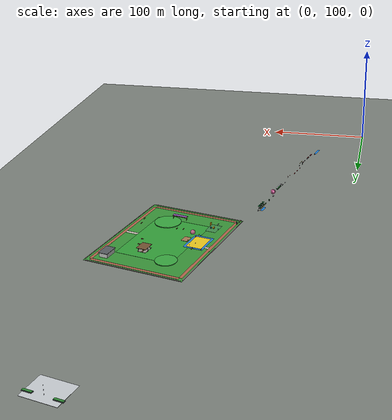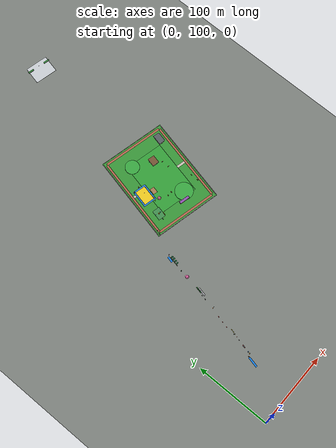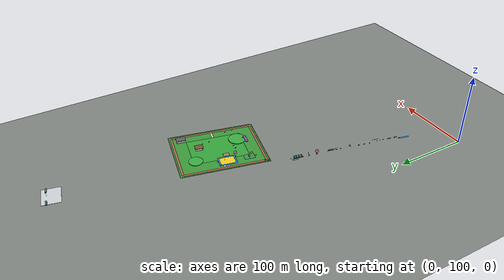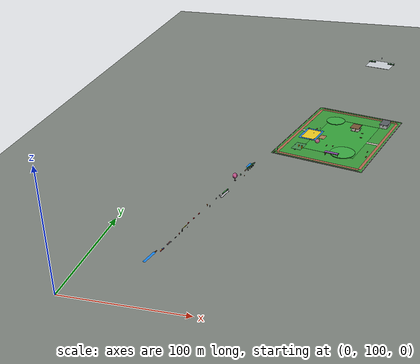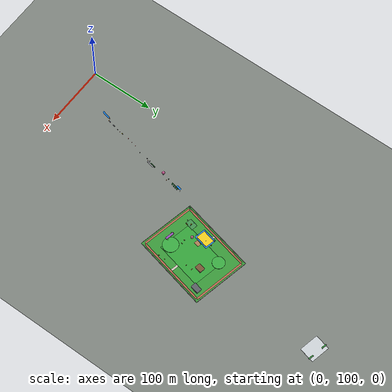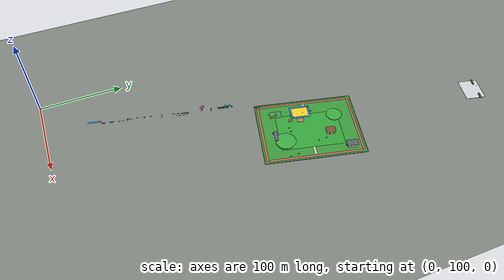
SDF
<sdf version="1.8">
 <world name="guanxin_world">
  <model name="ground_plane">
   <static>true</static>
   <pose>-100 480 0 0 0 0</pose>
   <link name="ground_link">
    <collision name="ground_col">
     <geometry><plane><normal>0 0 1</normal><size>1400 1400</size></plane></geometry>
     <surface>
      <friction><ode><mu>0.9</mu><mu2>0.9</mu2></ode></friction>
      <contact><ode><kd>100000</kd><kp>10000000</kp></ode></contact>
     </surface>
    </collision>
    <visual name="ground_vis">
     <geometry><plane><normal>0 0 1</normal><size>1400 1400</size></plane></geometry>
     <material><ambient>0.42 0.44 0.42 1</ambient><diffuse>0.48 0.50 0.48 1</diffuse></material>
    </visual>
   </link>
  </model>
  <model name="commercial_strip_details">
   <static>true</static>
   <link name="details_link">
    <collision name="cart_corral_col">
     <pose>53.955 176.913 0.450 0.000 0.000 1.34512</pose>
     <geometry><box><size>5.0 1.2 0.9</size></box></geometry>
    </collision>
    <visual name="cart_corral_rail_l">
     <pose>54.442 176.801 0.500 0.000 1.571 1.34512</pose>
     <geometry><cylinder><radius>0.03</radius><length>5.0</length></cylinder></geometry>
     <material><ambient>0.7 0.7 0.75 1</ambient><diffuse>0.85 0.85 0.9 1</diffuse></material>
    </visual>
    <visual name="cart_corral_rail_r">
     <pose>53.468 177.025 0.500 0.000 1.571 1.34512</pose>
     <geometry><cylinder><radius>0.03</radius><length>5.0</length></cylinder></geometry>
     <material><ambient>0.7 0.7 0.75 1</ambient><diffuse>0.85 0.85 0.9 1</diffuse></material>
    </visual>
    <visual name="cart_corral_post1">
     <pose>53.905 174.462 0.450 0.000 0.000 1.34512</pose>
     <geometry><cylinder><radius>0.035</radius><length>0.9</length></cylinder></geometry>
     <material><ambient>0.7 0.7 0.75 1</ambient><diffuse>0.85 0.85 0.9 1</diffuse></material>
    </visual>
    <visual name="cart_corral_post2">
     <pose>54.979 179.140 0.450 0.000 0.000 1.34512</pose>
     <geometry><cylinder><radius>0.035</radius><length>0.9</length></cylinder></geometry>
     <material><ambient>0.7 0.7 0.75 1</ambient><diffuse>0.85 0.85 0.9 1</diffuse></material>
    </visual>
    <visual name="cart_corral_post3">
     <pose>52.931 174.685 0.450 0.000 0.000 1.34512</pose>
     <geometry><cylinder><radius>0.035</radius><length>0.9</length></cylinder></geometry>
     <material><ambient>0.7 0.7 0.75 1</ambient><diffuse>0.85 0.85 0.9 1</diffuse></material>
    </visual>
    <visual name="cart_corral_post4">
     <pose>54.005 179.364 0.450 0.000 0.000 1.34512</pose>
     <geometry><cylinder><radius>0.035</radius><length>0.9</length></cylinder></geometry>
     <material><ambient>0.7 0.7 0.75 1</ambient><diffuse>0.85 0.85 0.9 1</diffuse></material>
    </visual>
    <visual name="carts_row1">
     <pose>54.199 176.857 0.480 0.000 0.000 1.34512</pose>
     <geometry><box><size>4.5 0.4 0.75</size></box></geometry>
     <material><ambient>0.6 0.62 0.65 1</ambient><diffuse>0.75 0.78 0.8 1</diffuse></material>
    </visual>
    <visual name="carts_row1_handles">
     <pose>54.199 176.857 0.880 0.000 0.000 1.34512</pose>
     <geometry><box><size>4.5 0.08 0.05</size></box></geometry>
     <material><ambient>0.85 0.1 0.1 1</ambient><diffuse>0.95 0.12 0.12 1</diffuse></material>
    </visual>
    <visual name="carts_row2">
     <pose>53.711 176.969 0.480 0.000 0.000 1.34512</pose>
     <geometry><box><size>4.5 0.4 0.75</size></box></geometry>
     <material><ambient>0.6 0.62 0.65 1</ambient><diffuse>0.75 0.78 0.8 1</diffuse></material>
    </visual>
    <visual name="carts_row2_handles">
     <pose>53.711 176.969 0.880 0.000 0.000 1.34512</pose>
     <geometry><box><size>4.5 0.08 0.05</size></box></geometry>
     <material><ambient>0.85 0.1 0.1 1</ambient><diffuse>0.95 0.12 0.12 1</diffuse></material>
    </visual>
    <visual name="poya_promo_cart1">
     <pose>51.689 166.147 0.450 0.000 0.000 1.34512</pose>
     <geometry><box><size>1.6 0.9 0.75</size></box></geometry>
     <material><ambient>0.85 0.1 0.3 1</ambient><diffuse>0.92 0.15 0.35 1</diffuse></material>
    </visual>
    <visual name="poya_promo_goods1">
     <pose>51.689 166.147 0.900 0.000 0.000 1.34512</pose>
     <geometry><box><size>1.5 0.8 0.2</size></box></geometry>
     <material><ambient>0.9 0.8 0.3 1</ambient><diffuse>0.95 0.85 0.35 1</diffuse></material>
    </visual>
    <visual name="poya_promo_cart2">
     <pose>52.248 168.583 0.450 0.000 0.000 1.34512</pose>
     <geometry><box><size>1.6 0.9 0.75</size></box></geometry>
     <material><ambient>0.85 0.1 0.3 1</ambient><diffuse>0.92 0.15 0.35 1</diffuse></material>
    </visual>
    <visual name="poya_promo_goods2">
     <pose>52.248 168.583 0.900 0.000 0.000 1.34512</pose>
     <geometry><box><size>1.5 0.8 0.2</size></box></geometry>
     <material><ambient>0.3 0.7 0.9 1</ambient><diffuse>0.35 0.75 0.95 1</diffuse></material>
    </visual>
    <collision name="bench_poya_col">
     <pose>48.205 164.382 0.400 0.000 0.000 1.34512</pose>
     <geometry><box><size>2.0 0.6 0.5</size></box></geometry>
    </collision>
    <visual name="bench_poya_vis">
     <pose>48.205 164.382 0.350 0.000 0.000 1.34512</pose>
     <geometry><box><size>2.0 0.6 0.45</size></box></geometry>
     <material><ambient>0.45 0.28 0.15 1</ambient><diffuse>0.55 0.35 0.2 1</diffuse></material>
    </visual>
    <visual name="cheogajip_wait_bench">
     <pose>56.164 185.640 0.350 0.000 0.000 1.34512</pose>
     <geometry><box><size>1.8 0.5 0.45</size></box></geometry>
     <material><ambient>0.2 0.2 0.2 1</ambient><diffuse>0.25 0.25 0.25 1</diffuse></material>
    </visual>
    <visual name="cheogajip_menu_stand">
     <pose>57.283 190.513 0.650 0.000 0.000 1.34512</pose>
     <geometry><box><size>0.6 0.4 1.3</size></box></geometry>
     <material><ambient>0.85 0.15 0.1 1</ambient><diffuse>0.9 0.2 0.12 1</diffuse></material>
    </visual>
    <collision name="mcd_gantry_post_l">
     <pose>58.470 194.344 1.500 0.000 0.000 1.34512</pose>
     <geometry><cylinder><radius>0.08</radius><length>3.0</length></cylinder></geometry>
    </collision>
    <visual name="mcd_gantry_post_l_vis">
     <pose>58.470 194.344 1.500 0.000 0.000 1.34512</pose>
     <geometry><cylinder><radius>0.08</radius><length>3.0</length></cylinder></geometry>
     <material><ambient>0.2 0.2 0.2 1</ambient><diffuse>0.25 0.25 0.25 1</diffuse></material>
    </visual>
    <collision name="mcd_gantry_post_r">
     <pose>60.037 201.167 1.500 0.000 0.000 1.34512</pose>
     <geometry><cylinder><radius>0.08</radius><length>3.0</length></cylinder></geometry>
    </collision>
    <visual name="mcd_gantry_post_r_vis">
     <pose>60.037 201.167 1.500 0.000 0.000 1.34512</pose>
     <geometry><cylinder><radius>0.08</radius><length>3.0</length></cylinder></geometry>
     <material><ambient>0.2 0.2 0.2 1</ambient><diffuse>0.25 0.25 0.25 1</diffuse></material>
    </visual>
    <visual name="mcd_gantry_bar">
     <pose>59.253 197.756 2.900 0.000 0.000 1.34512</pose>
     <geometry><box><size>7.2 0.2 0.35</size></box></geometry>
     <material><ambient>0.9 0.85 0.05 1</ambient><diffuse>0.95 0.9 0.05 1</diffuse></material>
    </visual>
    <visual name="mcd_gantry_sign">
     <pose>59.136 197.782 2.900 0.000 0.000 1.34512</pose>
     <geometry><box><size>3.0 0.05 0.25</size></box></geometry>
     <material><ambient>0.1 0.1 0.1 1</ambient><diffuse>0.15 0.15 0.15 1</diffuse></material>
    </visual>
    <visual name="mcd_in_pylon">
     <pose>57.652 195.250 1.200 0.000 0.000 1.34512</pose>
     <geometry><box><size>0.4 0.4 2.4</size></box></geometry>
     <material><ambient>0.15 0.15 0.15 1</ambient><diffuse>0.2 0.2 0.2 1</diffuse></material>
    </visual>
    <visual name="mcd_in_pylon_m">
     <pose>57.457 195.295 2.100 0.000 0.000 1.34512</pose>
     <geometry><box><size>0.3 0.05 0.3</size></box></geometry>
     <material><ambient>0.95 0.85 0.05 1</ambient><diffuse>0.98 0.88 0.05 1</diffuse></material>
    </visual>
    <visual name="mcd_barrier_1">
     <pose>58.831 207.087 0.450 0.000 0.000 1.34512</pose>
     <geometry><box><size>1.6 0.4 0.85</size></box></geometry>
     <material><ambient>0.85 0.1 0.1 1</ambient><diffuse>0.92 0.12 0.12 1</diffuse></material>
    </visual>
    <visual name="mcd_barrier_1_board">
     <pose>58.831 207.087 0.500 0.000 0.000 1.34512</pose>
     <geometry><box><size>1.4 0.05 0.45</size></box></geometry>
     <material><ambient>0.92 0.85 0.05 1</ambient><diffuse>0.95 0.88 0.05 1</diffuse></material>
    </visual>
    <visual name="mcd_barrier_2">
     <pose>60.621 214.884 0.450 0.000 0.000 1.34512</pose>
     <geometry><box><size>1.6 0.4 0.85</size></box></geometry>
     <material><ambient>0.85 0.1 0.1 1</ambient><diffuse>0.92 0.12 0.12 1</diffuse></material>
    </visual>
    <visual name="mcd_barrier_2_board">
     <pose>60.621 214.884 0.500 0.000 0.000 1.34512</pose>
     <geometry><box><size>1.4 0.05 0.45</size></box></geometry>
     <material><ambient>0.92 0.85 0.05 1</ambient><diffuse>0.95 0.88 0.05 1</diffuse></material>
    </visual>
    <visual name="mcd_barrier_3">
     <pose>62.411 222.681 0.450 0.000 0.000 1.34512</pose>
     <geometry><box><size>1.6 0.4 0.85</size></box></geometry>
     <material><ambient>0.85 0.1 0.1 1</ambient><diffuse>0.92 0.12 0.12 1</diffuse></material>
    </visual>
    <visual name="mcd_barrier_3_board">
     <pose>62.411 222.681 0.500 0.000 0.000 1.34512</pose>
     <geometry><box><size>1.4 0.05 0.45</size></box></geometry>
     <material><ambient>0.92 0.85 0.05 1</ambient><diffuse>0.95 0.88 0.05 1</diffuse></material>
    </visual>
    <collision name="convex_mirror_post_col">
     <pose>65.695 234.752 1.400 0.000 0.000 1.34512</pose>
     <geometry><cylinder><radius>0.05</radius><length>2.8</length></cylinder></geometry>
    </collision>
    <visual name="convex_mirror_post">
     <pose>65.695 234.752 1.400 0.000 0.000 1.34512</pose>
     <geometry><cylinder><radius>0.05</radius><length>2.8</length></cylinder></geometry>
     <material><ambient>0.9 0.4 0.05 1</ambient><diffuse>0.95 0.45 0.05 1</diffuse></material>
    </visual>
    <visual name="convex_mirror_dish">
     <pose>65.695 234.752 2.650 0.000 0.350 2.14512</pose>
     <geometry><cylinder><radius>0.45</radius><length>0.08</length></cylinder></geometry>
     <material><ambient>0.9 0.4 0.05 1</ambient><diffuse>0.95 0.45 0.05 1</diffuse></material>
    </visual>
    <visual name="convex_mirror_face">
     <pose>65.658 234.812 2.650 0.000 0.350 2.14512</pose>
     <geometry><cylinder><radius>0.40</radius><length>0.02</length></cylinder></geometry>
     <material><ambient>0.9 0.9 0.95 1</ambient><diffuse>0.95 0.95 1 1</diffuse></material>
    </visual>
    <visual name="mcd_out_pylon">
     <pose>67.801 234.987 1.000 0.000 0.000 1.34512</pose>
     <geometry><box><size>0.35 0.35 2.0</size></box></geometry>
     <material><ambient>0.15 0.15 0.15 1</ambient><diffuse>0.2 0.2 0.2 1</diffuse></material>
    </visual>
    <visual name="mcd_out_pylon_badge">
     <pose>67.606 235.032 1.700 0.000 0.000 1.34512</pose>
     <geometry><box><size>0.3 0.05 0.3</size></box></geometry>
     <material><ambient>0.85 0.1 0.1 1</ambient><diffuse>0.92 0.12 0.12 1</diffuse></material>
    </visual>
    <collision name="cathay_ramp_col">
     <pose>73.127 258.183 0.180 0 0 1.34512</pose>
     <geometry><box><size>12.0 1.6 0.36</size></box></geometry>
    </collision>
    <visual name="cathay_ramp_deck">
     <pose>73.419 258.116 0.180 0.000 0.000 1.34512</pose>
     <geometry><box><size>12.0 1.6 0.36</size></box></geometry>
     <material><ambient>0.7 0.7 0.72 1</ambient><diffuse>0.75 0.75 0.78 1</diffuse></material>
    </visual>
    <visual name="cathay_rail_top">
     <pose>72.640 258.295 0.850 0.000 1.571 1.34512</pose>
     <geometry><cylinder><radius>0.025</radius><length>12.0</length></cylinder></geometry>
     <material><ambient>0.7 0.7 0.75 1</ambient><diffuse>0.85 0.85 0.9 1</diffuse></material>
    </visual>
    <visual name="cathay_rail_mid">
     <pose>72.640 258.295 0.650 0.000 1.571 1.34512</pose>
     <geometry><cylinder><radius>0.02</radius><length>12.0</length></cylinder></geometry>
     <material><ambient>0.7 0.7 0.75 1</ambient><diffuse>0.85 0.85 0.9 1</diffuse></material>
    </visual>
    <visual name="cathay_rail_post1">
     <pose>71.342 252.642 0.500 0.000 0.000 1.34512</pose>
     <geometry><cylinder><radius>0.025</radius><length>0.8</length></cylinder></geometry>
     <material><ambient>0.7 0.7 0.75 1</ambient><diffuse>0.85 0.85 0.9 1</diffuse></material>
    </visual>
    <visual name="cathay_rail_post2">
     <pose>72.192 256.346 0.500 0.000 0.000 1.34512</pose>
     <geometry><cylinder><radius>0.025</radius><length>0.8</length></cylinder></geometry>
     <material><ambient>0.7 0.7 0.75 1</ambient><diffuse>0.85 0.85 0.9 1</diffuse></material>
    </visual>
    <visual name="cathay_rail_post3">
     <pose>73.087 260.245 0.500 0.000 0.000 1.34512</pose>
     <geometry><cylinder><radius>0.025</radius><length>0.8</length></cylinder></geometry>
     <material><ambient>0.7 0.7 0.75 1</ambient><diffuse>0.85 0.85 0.9 1</diffuse></material>
    </visual>
    <visual name="cathay_rail_post4">
     <pose>73.937 263.948 0.500 0.000 0.000 1.34512</pose>
     <geometry><cylinder><radius>0.025</radius><length>0.8</length></cylinder></geometry>
     <material><ambient>0.7 0.7 0.75 1</ambient><diffuse>0.85 0.85 0.9 1</diffuse></material>
    </visual>
    <visual name="cathay_planter">
     <pose>72.755 262.373 0.300 0.000 0.000 1.34512</pose>
     <geometry><box><size>9.0 1.2 0.45</size></box></geometry>
     <material><ambient>0.3 0.3 0.32 1</ambient><diffuse>0.35 0.35 0.38 1</diffuse></material>
    </visual>
    <visual name="cathay_shrubs">
     <pose>72.755 262.373 0.650 0.000 0.000 1.34512</pose>
     <geometry><box><size>8.6 0.9 0.35</size></box></geometry>
     <material><ambient>0.15 0.48 0.18 1</ambient><diffuse>0.18 0.55 0.22 1</diffuse></material>
    </visual>
    <visual name="cathay_barrier_1">
     <pose>68.648 248.952 0.450 0.000 0.000 1.34512</pose>
     <geometry><box><size>1.5 0.4 0.85</size></box></geometry>
     <material><ambient>0.15 0.15 0.18 1</ambient><diffuse>0.2 0.2 0.22 1</diffuse></material>
    </visual>
    <visual name="cathay_barrier_1_board">
     <pose>68.648 248.952 0.500 0.000 0.000 1.34512</pose>
     <geometry><box><size>1.3 0.05 0.45</size></box></geometry>
     <material><ambient>0.1 0.45 0.2 1</ambient><diffuse>0.15 0.55 0.25 1</diffuse></material>
    </visual>
    <visual name="cathay_barrier_2">
     <pose>69.990 254.800 0.450 0.000 0.000 1.34512</pose>
     <geometry><box><size>1.5 0.4 0.85</size></box></geometry>
     <material><ambient>0.15 0.15 0.18 1</ambient><diffuse>0.2 0.2 0.22 1</diffuse></material>
    </visual>
    <visual name="cathay_barrier_2_board">
     <pose>69.990 254.800 0.500 0.000 0.000 1.34512</pose>
     <geometry><box><size>1.3 0.05 0.45</size></box></geometry>
     <material><ambient>0.1 0.45 0.2 1</ambient><diffuse>0.15 0.55 0.25 1</diffuse></material>
    </visual>
    <visual name="cone_c1">
     <pose>70.586 251.585 0.350 0.000 0.000 1.34512</pose>
     <geometry><cylinder><radius>0.15</radius><length>0.7</length></cylinder></geometry>
     <material><ambient>0.95 0.35 0.05 1</ambient><diffuse>0.98 0.4 0.05 1</diffuse></material>
    </visual>
    <visual name="cone_c2">
     <pose>73.830 265.717 0.350 0.000 0.000 1.34512</pose>
     <geometry><cylinder><radius>0.15</radius><length>0.7</length></cylinder></geometry>
     <material><ambient>0.95 0.35 0.05 1</ambient><diffuse>0.98 0.4 0.05 1</diffuse></material>
    </visual>
    <collision name="pink_tree_trunk_col">
     <pose>75.310 283.333 2.000 0.000 0.000 1.34512</pose>
     <geometry><cylinder><radius>0.18</radius><length>4.0</length></cylinder></geometry>
    </collision>
    <visual name="pink_tree_trunk">
     <pose>75.310 283.333 2.000 0.000 0.000 1.34512</pose>
     <geometry><cylinder><radius>0.18</radius><length>4.0</length></cylinder></geometry>
     <material><ambient>0.3 0.22 0.16 1</ambient><diffuse>0.38 0.28 0.20 1</diffuse></material>
    </visual>
    <visual name="pink_tree_grate">
     <pose>75.310 283.333 0.185 0.000 0.000 1.34512</pose>
     <geometry><box><size>1.6 1.6 0.02</size></box></geometry>
     <material><ambient>0.2 0.2 0.2 1</ambient><diffuse>0.25 0.25 0.25 1</diffuse></material>
    </visual>
    <visual name="pink_blossom_main">
     <pose>75.310 283.333 4.800 0.000 0.000 1.34512</pose>
     <geometry><sphere><radius>2.2</radius></sphere></geometry>
     <material><ambient>0.92 0.35 0.65 1</ambient><diffuse>0.98 0.45 0.72 1</diffuse></material>
    </visual>
    <visual name="pink_blossom_sub1">
     <pose>74.949 284.442 5.400 0.000 0.000 1.34512</pose>
     <geometry><sphere><radius>1.5</radius></sphere></geometry>
     <material><ambient>0.95 0.4 0.7 1</ambient><diffuse>0.98 0.5 0.75 1</diffuse></material>
    </visual>
    <visual name="pink_blossom_sub2">
     <pose>75.716 282.419 5.100 0.000 0.000 1.34512</pose>
     <geometry><sphere><radius>1.6</radius></sphere></geometry>
     <material><ambient>0.90 0.32 0.62 1</ambient><diffuse>0.95 0.42 0.68 1</diffuse></material>
    </visual>
    <visual name="cosmed_flag1">
     <pose>78.162 280.113 1.400 0.000 0.000 1.34512</pose>
     <geometry><box><size>0.4 0.1 2.2</size></box></geometry>
     <material><ambient>0.95 0.4 0.05 1</ambient><diffuse>0.98 0.45 0.05 1</diffuse></material>
    </visual>
    <visual name="cosmed_flag2">
     <pose>81.071 292.783 1.400 0.000 0.000 1.34512</pose>
     <geometry><box><size>0.4 0.1 2.2</size></box></geometry>
     <material><ambient>0.95 0.4 0.05 1</ambient><diffuse>0.98 0.45 0.05 1</diffuse></material>
    </visual>
    <collision name="sbux_fence_col">
     <pose>80.640 308.785 0.550 0.000 0.000 1.34512</pose>
     <geometry><box><size>14.0 0.4 0.9</size></box></geometry>
    </collision>
    <visual name="sbux_fence_wood">
     <pose>80.640 308.785 0.500 0.000 0.000 1.34512</pose>
     <geometry><box><size>14.0 0.35 0.8</size></box></geometry>
     <material><ambient>0.28 0.18 0.1 1</ambient><diffuse>0.35 0.22 0.14 1</diffuse></material>
    </visual>
    <visual name="sbux_fence_hedges">
     <pose>80.640 308.785 0.950 0.000 0.000 1.34512</pose>
     <geometry><box><size>13.8 0.4 0.3</size></box></geometry>
     <material><ambient>0.15 0.45 0.15 1</ambient><diffuse>0.2 0.55 0.2 1</diffuse></material>
    </visual>
    <visual name="sbux_table_1">
     <pose>81.583 303.952 0.420 0.000 0.000 1.34512</pose>
     <geometry><cylinder><radius>0.45</radius><length>0.75</length></cylinder></geometry>
     <material><ambient>0.2 0.2 0.2 1</ambient><diffuse>0.25 0.25 0.25 1</diffuse></material>
    </visual>
    <visual name="sbux_umbrella_pole_1">
     <pose>81.583 303.952 1.250 0.000 0.000 1.34512</pose>
     <geometry><cylinder><radius>0.03</radius><length>2.5</length></cylinder></geometry>
     <material><ambient>0.3 0.3 0.3 1</ambient><diffuse>0.35 0.35 0.35 1</diffuse></material>
    </visual>
    <visual name="sbux_umbrella_canopy_1">
     <pose>81.583 303.952 2.350 0.000 0.000 1.34512</pose>
     <geometry><cylinder><radius>1.1</radius><length>0.35</length></cylinder></geometry>
     <material><ambient>0.05 0.32 0.16 1</ambient><diffuse>0.08 0.40 0.20 1</diffuse></material>
    </visual>
    <visual name="sbux_table_2">
     <pose>82.366 307.363 0.420 0.000 0.000 1.34512</pose>
     <geometry><cylinder><radius>0.45</radius><length>0.75</length></cylinder></geometry>
     <material><ambient>0.2 0.2 0.2 1</ambient><diffuse>0.25 0.25 0.25 1</diffuse></material>
    </visual>
    <visual name="sbux_umbrella_pole_2">
     <pose>82.366 307.363 1.250 0.000 0.000 1.34512</pose>
     <geometry><cylinder><radius>0.03</radius><length>2.5</length></cylinder></geometry>
     <material><ambient>0.3 0.3 0.3 1</ambient><diffuse>0.35 0.35 0.35 1</diffuse></material>
    </visual>
    <visual name="sbux_umbrella_canopy_2">
     <pose>82.366 307.363 2.350 0.000 0.000 1.34512</pose>
     <geometry><cylinder><radius>1.1</radius><length>0.35</length></cylinder></geometry>
     <material><ambient>0.05 0.32 0.16 1</ambient><diffuse>0.08 0.40 0.20 1</diffuse></material>
    </visual>
    <visual name="sbux_table_3">
     <pose>83.149 310.774 0.420 0.000 0.000 1.34512</pose>
     <geometry><cylinder><radius>0.45</radius><length>0.75</length></cylinder></geometry>
     <material><ambient>0.2 0.2 0.2 1</ambient><diffuse>0.25 0.25 0.25 1</diffuse></material>
    </visual>
    <visual name="sbux_umbrella_pole_3">
     <pose>83.149 310.774 1.250 0.000 0.000 1.34512</pose>
     <geometry><cylinder><radius>0.03</radius><length>2.5</length></cylinder></geometry>
     <material><ambient>0.3 0.3 0.3 1</ambient><diffuse>0.35 0.35 0.35 1</diffuse></material>
    </visual>
    <visual name="sbux_umbrella_canopy_3">
     <pose>83.149 310.774 2.350 0.000 0.000 1.34512</pose>
     <geometry><cylinder><radius>1.1</radius><length>0.35</length></cylinder></geometry>
     <material><ambient>0.05 0.32 0.16 1</ambient><diffuse>0.08 0.40 0.20 1</diffuse></material>
    </visual>
    <visual name="sbux_table_4">
     <pose>83.820 313.698 0.420 0.000 0.000 1.34512</pose>
     <geometry><cylinder><radius>0.45</radius><length>0.75</length></cylinder></geometry>
     <material><ambient>0.2 0.2 0.2 1</ambient><diffuse>0.25 0.25 0.25 1</diffuse></material>
    </visual>
    <visual name="sbux_umbrella_pole_4">
     <pose>83.820 313.698 1.250 0.000 0.000 1.34512</pose>
     <geometry><cylinder><radius>0.03</radius><length>2.5</length></cylinder></geometry>
     <material><ambient>0.3 0.3 0.3 1</ambient><diffuse>0.35 0.35 0.35 1</diffuse></material>
    </visual>
    <visual name="sbux_umbrella_canopy_4">
     <pose>83.820 313.698 2.350 0.000 0.000 1.34512</pose>
     <geometry><cylinder><radius>1.1</radius><length>0.35</length></cylinder></geometry>
     <material><ambient>0.05 0.32 0.16 1</ambient><diffuse>0.08 0.40 0.20 1</diffuse></material>
    </visual>
    <collision name="hydrant_col">
     <pose>82.586 318.599 0.400 0.000 0.000 1.34512</pose>
     <geometry><cylinder><radius>0.16</radius><length>0.8</length></cylinder></geometry>
    </collision>
    <visual name="hydrant_body">
     <pose>82.586 318.599 0.400 0.000 0.000 1.34512</pose>
     <geometry><cylinder><radius>0.15</radius><length>0.8</length></cylinder></geometry>
     <material><ambient>0.85 0.05 0.05 1</ambient><diffuse>0.92 0.08 0.08 1</diffuse></material>
    </visual>
    <visual name="hydrant_cap">
     <pose>82.586 318.599 0.820 0.000 0.000 1.34512</pose>
     <geometry><sphere><radius>0.16</radius></sphere></geometry>
     <material><ambient>0.85 0.05 0.05 1</ambient><diffuse>0.92 0.08 0.08 1</diffuse></material>
    </visual>
    <visual name="hydrant_nozzle">
     <pose>82.439 318.632 0.500 1.571 0.000 1.34512</pose>
     <geometry><cylinder><radius>0.08</radius><length>0.35</length></cylinder></geometry>
     <material><ambient>0.8 0.8 0.1 1</ambient><diffuse>0.85 0.85 0.1 1</diffuse></material>
    </visual>
    <collision name="signal_cab_col">
     <pose>83.739 319.155 0.650 0.000 0.000 1.34512</pose>
     <geometry><box><size>0.6 0.5 1.1</size></box></geometry>
    </collision>
    <visual name="signal_cab_base">
     <pose>83.739 319.155 0.100 0.000 0.000 1.34512</pose>
     <geometry><box><size>0.65 0.55 0.2</size></box></geometry>
     <material><ambient>0.55 0.55 0.55 1</ambient><diffuse>0.6 0.6 0.6 1</diffuse></material>
    </visual>
    <visual name="signal_cab_body">
     <pose>83.739 319.155 0.700 0.000 0.000 1.34512</pose>
     <geometry><box><size>0.58 0.48 1.0</size></box></geometry>
     <material><ambient>0.72 0.74 0.76 1</ambient><diffuse>0.78 0.80 0.82 1</diffuse></material>
    </visual>
    <collision name="taipower_col">
     <pose>77.381 294.143 0.650 0.000 0.000 1.34512</pose>
     <geometry><box><size>1.2 0.7 1.3</size></box></geometry>
    </collision>
    <visual name="taipower_base">
     <pose>77.381 294.143 0.100 0.000 0.000 1.34512</pose>
     <geometry><box><size>1.25 0.75 0.2</size></box></geometry>
     <material><ambient>0.55 0.55 0.55 1</ambient><diffuse>0.6 0.6 0.6 1</diffuse></material>
    </visual>
    <visual name="taipower_body">
     <pose>77.381 294.143 0.750 0.000 0.000 1.34512</pose>
     <geometry><box><size>1.18 0.68 1.1</size></box></geometry>
     <material><ambient>0.12 0.32 0.16 1</ambient><diffuse>0.15 0.38 0.20 1</diffuse></material>
    </visual>
    <visual name="taipower_flash">
     <pose>77.030 294.224 0.900 0.000 0.000 1.34512</pose>
     <geometry><box><size>0.2 0.02 0.2</size></box></geometry>
     <material><ambient>0.9 0.85 0.05 1</ambient><diffuse>0.95 0.9 0.05 1</diffuse></material>
    </visual>
    <visual name="blue_bay_poya">
     <pose>46.220 156.629 0.185 0.000 0.000 1.34512</pose>
     <geometry><box><size>14.0 2.2 0.005</size></box></geometry>
     <material><ambient>0.08 0.45 0.82 1</ambient><diffuse>0.1 0.52 0.92 1</diffuse></material>
    </visual>
    <visual name="blue_bay_sbux">
     <pose>79.810 314.106 0.025 0.000 0.000 1.34512</pose>
     <geometry><box><size>8.0 2.4 0.005</size></box></geometry>
     <material><ambient>0.08 0.45 0.82 1</ambient><diffuse>0.1 0.52 0.92 1</diffuse></material>
    </visual>
   </link>
  </model>
  <model name="xinzhuang_station_plaza">
   <static>true</static>
   <link name="plaza_link">
    <collision name="plaza_deck_col">
     <pose>168.212 609.803 0.075 0 0 -0.22568</pose>
     <geometry><box><size>30.0 14.0 0.15</size></box></geometry>
    </collision>
    <visual name="plaza_deck_vis">
     <pose>168.212 609.803 0.075 0 0 -0.22568</pose>
     <geometry><box><size>30.0 24.0 0.15</size></box></geometry>
     <material><ambient>0.72 0.74 0.76 1</ambient><diffuse>0.78 0.80 0.82 1</diffuse></material>
    </visual>
    <visual name="plaza_planter1">
     <pose>157.859 618.337 0.35 0 0 -0.22568</pose>
     <geometry><box><size>8.0 2.2 0.50</size></box></geometry>
     <material><ambient>0.45 0.48 0.5 1</ambient><diffuse>0.52 0.55 0.58 1</diffuse></material>
    </visual>
    <visual name="plaza_shrub1">
     <pose>157.859 618.337 0.80 0 0 -0.22568</pose>
     <geometry><box><size>7.6 1.8 0.45</size></box></geometry>
     <material><ambient>0.15 0.48 0.18 1</ambient><diffuse>0.20 0.55 0.22 1</diffuse></material>
    </visual>
    <visual name="plaza_planter2">
     <pose>181.250 612.966 0.35 0 0 -0.22568</pose>
     <geometry><box><size>8.0 2.2 0.50</size></box></geometry>
     <material><ambient>0.45 0.48 0.5 1</ambient><diffuse>0.52 0.55 0.58 1</diffuse></material>
    </visual>
    <visual name="plaza_shrub2">
     <pose>181.250 612.966 0.80 0 0 -0.22568</pose>
     <geometry><box><size>7.6 1.8 0.45</size></box></geometry>
     <material><ambient>0.15 0.48 0.18 1</ambient><diffuse>0.20 0.55 0.22 1</diffuse></material>
    </visual>
    <visual name="flagpole1">
     <pose>169.331 614.677 4.0 0 0 0</pose>
     <geometry><cylinder><radius>0.05</radius><length>8.0</length></cylinder></geometry>
     <material><ambient>0.8 0.8 0.85 1</ambient><diffuse>0.9 0.9 0.95 1</diffuse></material>
    </visual>
   </link>
  </model>
  <model name="sun_park_landscape">
   <static>true</static>
   <link name="park_link">
    <collision name="park_base_col">
     <pose>151.079 392.137 0.05 0 0 1.34512</pose>
     <geometry><box><size>120.0 91.0 0.10</size></box></geometry>
    </collision>
    <visual name="park_base_vis">
     <pose>151.079 392.137 0.05 0 0 1.34512</pose>
     <geometry><box><size>120.0 91.0 0.10</size></box></geometry>
     <material><ambient>0.18 0.50 0.18 1</ambient><diffuse>0.22 0.58 0.22 1</diffuse></material>
    </visual>
    <collision name="wall_w_col">
     <pose>107.025 402.251 0.25 0 0 1.34512</pose>
     <geometry><box><size>116.0 0.6 0.50</size></box></geometry>
    </collision>
    <visual name="wall_w_vis">
     <pose>107.025 402.251 0.25 0 0 1.34512</pose>
     <geometry><box><size>116.0 0.6 0.50</size></box></geometry>
     <material><ambient>0.65 0.62 0.58 1</ambient><diffuse>0.72 0.68 0.64 1</diffuse></material>
    </visual>
    <collision name="wall_e_col">
     <pose>195.133 382.023 0.25 0 0 1.34512</pose>
     <geometry><box><size>116.0 0.6 0.50</size></box></geometry>
    </collision>
    <visual name="wall_e_vis">
     <pose>195.133 382.023 0.25 0 0 1.34512</pose>
     <geometry><box><size>116.0 0.6 0.50</size></box></geometry>
     <material><ambient>0.65 0.62 0.58 1</ambient><diffuse>0.72 0.68 0.64 1</diffuse></material>
    </visual>
    <collision name="wall_s_col">
     <pose>137.720 333.951 0.25 0 0 -0.22568</pose>
     <geometry><box><size>88.0 0.6 0.50</size></box></geometry>
    </collision>
    <visual name="wall_s_vis">
     <pose>137.720 333.951 0.25 0 0 -0.22568</pose>
     <geometry><box><size>88.0 0.6 0.50</size></box></geometry>
     <material><ambient>0.65 0.62 0.58 1</ambient><diffuse>0.72 0.68 0.64 1</diffuse></material>
    </visual>
    <collision name="wall_n_col">
     <pose>164.438 450.323 0.25 0 0 -0.22568</pose>
     <geometry><box><size>88.0 0.6 0.50</size></box></geometry>
    </collision>
    <visual name="wall_n_vis">
     <pose>164.438 450.323 0.25 0 0 -0.22568</pose>
     <geometry><box><size>88.0 0.6 0.50</size></box></geometry>
     <material><ambient>0.65 0.62 0.58 1</ambient><diffuse>0.72 0.68 0.64 1</diffuse></material>
    </visual>
    <visual name="monument_base">
     <pose>96.191 345.230 0.45 0 0 1.34512</pose>
     <geometry><box><size>3.6 0.8 0.90</size></box></geometry>
     <material><ambient>0.35 0.35 0.38 1</ambient><diffuse>0.42 0.42 0.45 1</diffuse></material>
    </visual>
    <visual name="monument_plaque">
     <pose>96.191 345.230 0.50 0 0 1.34512</pose>
     <geometry><box><size>3.2 0.85 0.55</size></box></geometry>
     <material>
      <ambient>0.85 0.75 0.1 1</ambient>
      <diffuse>0.92 0.82 0.12 1</diffuse>
      <emissive>0.3 0.25 0.05 1</emissive>
     </material>
    </visual>
    <visual name="walk_w">
     <pose>110.631 401.423 0.105 0 0 1.34512</pose>
     <geometry><box><size>110.0 2.8 0.01</size></box></geometry>
     <material><ambient>0.62 0.35 0.26 1</ambient><diffuse>0.68 0.40 0.30 1</diffuse></material>
    </visual>
    <visual name="walk_e">
     <pose>191.526 382.851 0.105 0 0 1.34512</pose>
     <geometry><box><size>110.0 2.8 0.01</size></box></geometry>
     <material><ambient>0.62 0.35 0.26 1</ambient><diffuse>0.68 0.40 0.30 1</diffuse></material>
    </visual>
    <visual name="walk_s">
     <pose>138.548 337.557 0.105 0 0 -0.22568</pose>
     <geometry><box><size>82.0 2.8 0.01</size></box></geometry>
     <material><ambient>0.62 0.35 0.26 1</ambient><diffuse>0.68 0.40 0.30 1</diffuse></material>
    </visual>
    <visual name="walk_n">
     <pose>163.610 446.717 0.105 0 0 -0.22568</pose>
     <geometry><box><size>82.0 2.8 0.01</size></box></geometry>
     <material><ambient>0.62 0.35 0.26 1</ambient><diffuse>0.68 0.40 0.30 1</diffuse></material>
    </visual>
    <visual name="walk_cross">
     <pose>151.079 392.137 0.106 0 0 -0.22568</pose>
     <geometry><box><size>80.0 3.2 0.01</size></box></geometry>
     <material><ambient>0.72 0.70 0.65 1</ambient><diffuse>0.78 0.75 0.70 1</diffuse></material>
    </visual>
    <visual name="main_sun_lawn">
     <pose>153.515 391.578 0.108 0 0 1.34512</pose>
     <geometry><box><size>75.0 52.0 0.01</size></box></geometry>
     <material><ambient>0.15 0.55 0.18 1</ambient><diffuse>0.20 0.62 0.22 1</diffuse></material>
    </visual>
    <visual name="topo_mound1">
     <pose>159.249 358.455 0.45 0 0 1.34512</pose>
     <geometry><cylinder><radius>12.0</radius><length>0.7</length></cylinder></geometry>
     <material><ambient>0.18 0.58 0.20 1</ambient><diffuse>0.22 0.65 0.25 1</diffuse></material>
    </visual>
    <visual name="topo_mound2">
     <pose>141.631 429.191 0.40 0 0 1.34512</pose>
     <geometry><cylinder><radius>9.5</radius><length>0.6</length></cylinder></geometry>
     <material><ambient>0.18 0.58 0.20 1</ambient><diffuse>0.22 0.65 0.25 1</diffuse></material>
    </visual>
    <collision name="pav_base_col">
     <pose>164.734 413.626 0.15 0 0 1.34512</pose>
     <geometry><box><size>10.0 8.0 0.3</size></box></geometry>
    </collision>
    <visual name="pav_base_vis">
     <pose>164.734 413.626 0.15 0 0 1.34512</pose>
     <geometry><box><size>10.0 8.0 0.3</size></box></geometry>
     <material><ambient>0.5 0.48 0.45 1</ambient><diffuse>0.58 0.55 0.52 1</diffuse></material>
    </visual>
    <collision name="pav_roof_col">
     <pose>164.734 413.626 3.4 0 0 1.34512</pose>
     <geometry><box><size>11.0 9.0 0.3</size></box></geometry>
    </collision>
    <visual name="pav_roof_vis">
     <pose>164.734 413.626 3.4 0 0 1.34512</pose>
     <geometry><box><size>11.0 9.0 0.3</size></box></geometry>
     <material><ambient>0.35 0.25 0.15 1</ambient><diffuse>0.45 0.32 0.20 1</diffuse></material>
    </visual>
    <visual name="pav_col_-4.2_-3.2">
     <pose>160.534 410.426 1.7 0 0 0</pose>
     <geometry><cylinder><radius>0.15</radius><length>3.1</length></cylinder></geometry>
     <material><ambient>0.22 0.24 0.26 1</ambient><diffuse>0.28 0.30 0.32 1</diffuse></material>
    </visual>
    <visual name="pav_col_4.2_-3.2">
     <pose>168.934 410.426 1.7 0 0 0</pose>
     <geometry><cylinder><radius>0.15</radius><length>3.1</length></cylinder></geometry>
     <material><ambient>0.22 0.24 0.26 1</ambient><diffuse>0.28 0.30 0.32 1</diffuse></material>
    </visual>
    <visual name="pav_col_-4.2_3.2">
     <pose>160.534 416.826 1.7 0 0 0</pose>
     <geometry><cylinder><radius>0.15</radius><length>3.1</length></cylinder></geometry>
     <material><ambient>0.22 0.24 0.26 1</ambient><diffuse>0.28 0.30 0.32 1</diffuse></material>
    </visual>
    <visual name="pav_col_4.2_3.2">
     <pose>168.934 416.826 1.7 0 0 0</pose>
     <geometry><cylinder><radius>0.15</radius><length>3.1</length></cylinder></geometry>
     <material><ambient>0.22 0.24 0.26 1</ambient><diffuse>0.28 0.30 0.32 1</diffuse></material>
    </visual>
    <visual name="pav_bench1">
     <pose>164.734 411.826 0.45 0 0 1.34512</pose>
     <geometry><box><size>6.0 0.6 0.45</size></box></geometry>
     <material><ambient>0.48 0.30 0.15 1</ambient><diffuse>0.55 0.36 0.20 1</diffuse></material>
    </visual>
    <visual name="pav_bench2">
     <pose>164.734 415.426 0.45 0 0 1.34512</pose>
     <geometry><box><size>6.0 0.6 0.45</size></box></geometry>
     <material><ambient>0.48 0.30 0.15 1</ambient><diffuse>0.55 0.36 0.20 1</diffuse></material>
    </visual>
    <collision name="restroom_col">
     <pose>192.600 427.749 2.0 0 0 1.34512</pose>
     <geometry><box><size>12.0 7.5 4.0</size></box></geometry>
    </collision>
    <visual name="restroom_vis">
     <pose>192.600 427.749 2.0 0 0 1.34512</pose>
     <geometry><box><size>12.0 7.5 4.0</size></box></geometry>
     <material><ambient>0.72 0.74 0.72 1</ambient><diffuse>0.78 0.80 0.78 1</diffuse></material>
    </visual>
    <visual name="restroom_roof">
     <pose>192.600 427.749 4.15 0 0 1.34512</pose>
     <geometry><box><size>13.2 8.5 0.3</size></box></geometry>
     <material><ambient>0.28 0.30 0.32 1</ambient><diffuse>0.34 0.36 0.38 1</diffuse></material>
    </visual>
    <visual name="restroom_screen">
     <pose>191.100 423.549 1.5 0 0 1.34512</pose>
     <geometry><box><size>5.0 0.15 3.0</size></box></geometry>
     <material><ambient>0.45 0.28 0.15 1</ambient><diffuse>0.52 0.34 0.18 1</diffuse></material>
    </visual>
    <visual name="play_mat_blue">
     <pose>122.933 392.443 0.108 0 0 1.34512</pose>
     <geometry><box><size>24.0 18.0 0.015</size></box></geometry>
     <material><ambient>0.12 0.40 0.70 1</ambient><diffuse>0.16 0.50 0.85 1</diffuse></material>
    </visual>
    <visual name="play_mat_yellow_ring">
     <pose>122.933 392.443 0.110 0 0 1.34512</pose>
     <geometry><box><size>20.0 14.0 0.015</size></box></geometry>
     <material><ambient>0.85 0.70 0.10 1</ambient><diffuse>0.92 0.78 0.12 1</diffuse></material>
    </visual>
    <collision name="swing_frame_col">
     <pose>130.571 398.897 1.6 0 0 1.34512</pose>
     <geometry><box><size>4.5 1.8 3.2</size></box></geometry>
    </collision>
    <visual name="swing_beam">
     <pose>130.571 398.897 3.1 0 0 1.34512</pose>
     <geometry><cylinder><radius>0.08</radius><length>4.5</length></cylinder></geometry>
     <material><ambient>0.9 0.2 0.2 1</ambient><diffuse>0.95 0.25 0.25 1</diffuse></material>
    </visual>
    <visual name="swing_seat1">
     <pose>129.471 398.897 0.5 0 0 0</pose>
     <geometry><box><size>0.6 0.25 0.06</size></box></geometry>
     <material><ambient>0.1 0.1 0.1 1</ambient><diffuse>0.2 0.2 0.2 1</diffuse></material>
    </visual>
    <visual name="swing_seat2">
     <pose>131.671 398.897 0.5 0 0 0</pose>
     <geometry><box><size>0.6 0.25 0.06</size></box></geometry>
     <material><ambient>0.1 0.1 0.1 1</ambient><diffuse>0.2 0.2 0.2 1</diffuse></material>
    </visual>
    <visual name="fit_mat">
     <pose>116.220 363.204 0.108 0 0 1.34512</pose>
     <geometry><box><size>14.0 10.0 0.015</size></box></geometry>
     <material><ambient>0.20 0.45 0.25 1</ambient><diffuse>0.25 0.55 0.30 1</diffuse></material>
    </visual>
    <visual name="walker_vis">
     <pose>116.220 363.204 0.75 0 0 1.34512</pose>
     <geometry><box><size>1.6 1.2 1.4</size></box></geometry>
     <material><ambient>0.85 0.65 0.05 1</ambient><diffuse>0.92 0.72 0.08 1</diffuse></material>
    </visual>
    <visual name="twister_vis">
     <pose>118.720 363.204 0.65 0 0 0</pose>
     <geometry><cylinder><radius>0.5</radius><length>1.2</length></cylinder></geometry>
     <material><ambient>0.2 0.5 0.7 1</ambient><diffuse>0.25 0.6 0.8 1</diffuse></material>
    </visual>
    <visual name="walk_diag_sw_ne">
     <pose>146.0 380.0 0.106 0 0 0.56</pose>
     <geometry><box><size>52.0 2.2 0.01</size></box></geometry>
     <material><ambient>0.70 0.66 0.60 1</ambient><diffuse>0.76 0.72 0.66 1</diffuse></material>
    </visual>
    <visual name="walk_north_terrace">
     <pose>162.0 425.0 0.106 0 0 -0.22568</pose>
     <geometry><box><size>38.0 2.0 0.01</size></box></geometry>
     <material><ambient>0.70 0.66 0.60 1</ambient><diffuse>0.76 0.72 0.66 1</diffuse></material>
    </visual>
    <visual name="bench_lawn_1">
     <pose>142.0 370.0 0.45 0 0 1.34512</pose>
     <geometry><box><size>2.2 0.65 0.45</size></box></geometry>
     <material><ambient>0.48 0.30 0.15 1</ambient><diffuse>0.56 0.36 0.20 1</diffuse></material>
    </visual>
    <visual name="bench_lawn_2">
     <pose>148.0 370.0 0.45 0 0 1.34512</pose>
     <geometry><box><size>2.2 0.65 0.45</size></box></geometry>
     <material><ambient>0.48 0.30 0.15 1</ambient><diffuse>0.56 0.36 0.20 1</diffuse></material>
    </visual>
    <visual name="bench_lawn_3">
     <pose>172.0 395.0 0.45 0 0 -0.22568</pose>
     <geometry><box><size>2.2 0.65 0.45</size></box></geometry>
     <material><ambient>0.48 0.30 0.15 1</ambient><diffuse>0.56 0.36 0.20 1</diffuse></material>
    </visual>
    <visual name="bench_lawn_4">
     <pose>172.0 405.0 0.45 0 0 -0.22568</pose>
     <geometry><box><size>2.2 0.65 0.45</size></box></geometry>
     <material><ambient>0.48 0.30 0.15 1</ambient><diffuse>0.56 0.36 0.20 1</diffuse></material>
    </visual>
    <visual name="bench_play_1">
     <pose>126.0 405.0 0.45 0 0 1.34512</pose>
     <geometry><box><size>2.2 0.65 0.45</size></box></geometry>
     <material><ambient>0.48 0.30 0.15 1</ambient><diffuse>0.56 0.36 0.20 1</diffuse></material>
    </visual>
    <visual name="bench_play_2">
     <pose>118.0 405.0 0.45 0 0 1.34512</pose>
     <geometry><box><size>2.2 0.65 0.45</size></box></geometry>
     <material><ambient>0.48 0.30 0.15 1</ambient><diffuse>0.56 0.36 0.20 1</diffuse></material>
    </visual>
    <visual name="bench_tree_1">
     <pose>182.0 355.0 0.45 0 0 1.34512</pose>
     <geometry><box><size>2.2 0.65 0.45</size></box></geometry>
     <material><ambient>0.48 0.30 0.15 1</ambient><diffuse>0.56 0.36 0.20 1</diffuse></material>
    </visual>
    <visual name="bench_tree_2">
     <pose>182.0 365.0 0.45 0 0 1.34512</pose>
     <geometry><box><size>2.2 0.65 0.45</size></box></geometry>
     <material><ambient>0.48 0.30 0.15 1</ambient><diffuse>0.56 0.36 0.20 1</diffuse></material>
    </visual>
    <visual name="seesaw_beam1">
     <pose>128.0 382.0 0.65 0 0.25 1.34512</pose>
     <geometry><box><size>3.6 0.28 0.12</size></box></geometry>
     <material><ambient>0.9 0.4 0.1 1</ambient><diffuse>0.98 0.48 0.15 1</diffuse></material>
    </visual>
    <visual name="seesaw_base1">
     <pose>128.0 382.0 0.35 0 0 1.34512</pose>
     <geometry><cylinder><radius>0.25</radius><length>0.6</length></cylinder></geometry>
     <material><ambient>0.3 0.3 0.35 1</ambient><diffuse>0.4 0.4 0.45 1</diffuse></material>
    </visual>
    <visual name="rocker_dolphin">
     <pose>124.0 380.0 0.55 0 0 1.34512</pose>
     <geometry><box><size>0.85 0.45 0.70</size></box></geometry>
     <material><ambient>0.1 0.5 0.8 1</ambient><diffuse>0.15 0.65 0.95 1</diffuse></material>
    </visual>
    <visual name="rocker_pony">
     <pose>126.0 378.0 0.55 0 0 1.34512</pose>
     <geometry><box><size>0.85 0.45 0.70</size></box></geometry>
     <material><ambient>0.85 0.70 0.15 1</ambient><diffuse>0.95 0.80 0.20 1</diffuse></material>
    </visual>
    <visual name="climb_dome">
     <pose>132.0 376.0 1.2 0 0 0</pose>
     <geometry><sphere><radius>2.2</radius></sphere></geometry>
     <material><ambient>0.85 0.25 0.55 0.75</ambient><diffuse>0.95 0.35 0.65 0.75</diffuse></material>
    </visual>
    <visual name="sandpit_curb">
     <pose>135.0 388.0 0.18 0 0 1.34512</pose>
     <geometry><box><size>8.0 6.0 0.25</size></box></geometry>
     <material><ambient>0.55 0.40 0.25 1</ambient><diffuse>0.65 0.48 0.32 1</diffuse></material>
    </visual>
    <visual name="sandpit_sand">
     <pose>135.0 388.0 0.16 0 0 1.34512</pose>
     <geometry><box><size>7.2 5.2 0.20</size></box></geometry>
     <material><ambient>0.85 0.80 0.65 1</ambient><diffuse>0.92 0.88 0.72 1</diffuse></material>
    </visual>
    <visual name="taichi_spinners">
     <pose>112.0 365.0 0.85 0 0 1.34512</pose>
     <geometry><cylinder><radius>0.45</radius><length>0.15</length></cylinder></geometry>
     <material><ambient>0.2 0.5 0.7 1</ambient><diffuse>0.25 0.6 0.8 1</diffuse></material>
    </visual>
    <visual name="pullup_frame">
     <pose>120.0 358.0 1.6 0 0 1.34512</pose>
     <geometry><box><size>3.2 0.15 3.0</size></box></geometry>
     <material><ambient>0.85 0.65 0.05 1</ambient><diffuse>0.92 0.72 0.08 1</diffuse></material>
    </visual>
    <visual name="situp_bench">
     <pose>114.0 355.0 0.45 0 0.25 1.34512</pose>
     <geometry><box><size>2.2 0.6 0.35</size></box></geometry>
     <material><ambient>0.3 0.3 0.35 1</ambient><diffuse>0.4 0.4 0.45 1</diffuse></material>
    </visual>
    <visual name="pergola_beams">
     <pose>150.0 350.0 3.2 0 0 -0.22568</pose>
     <geometry><box><size>14.0 3.6 0.3</size></box></geometry>
     <material><ambient>0.42 0.28 0.16 1</ambient><diffuse>0.50 0.34 0.20 1</diffuse></material>
    </visual>
    <visual name="pergola_vines">
     <pose>150.0 350.0 3.4 0 0 -0.22568</pose>
     <geometry><box><size>13.6 3.2 0.3</size></box></geometry>
     <material><ambient>0.45 0.25 0.55 1</ambient><diffuse>0.55 0.32 0.68 1</diffuse></material>
    </visual>
    <visual name="pergola_post1">
     <pose>144.0 348.5 1.6 0 0 0</pose>
     <geometry><cylinder><radius>0.15</radius><length>3.0</length></cylinder></geometry>
     <material><ambient>0.42 0.28 0.16 1</ambient><diffuse>0.50 0.34 0.20 1</diffuse></material>
    </visual>
    <visual name="pergola_post2">
     <pose>156.0 348.5 1.6 0 0 0</pose>
     <geometry><cylinder><radius>0.15</radius><length>3.0</length></cylinder></geometry>
     <material><ambient>0.42 0.28 0.16 1</ambient><diffuse>0.50 0.34 0.20 1</diffuse></material>
    </visual>
    <visual name="pergola_post3">
     <pose>144.0 351.5 1.6 0 0 0</pose>
     <geometry><cylinder><radius>0.15</radius><length>3.0</length></cylinder></geometry>
     <material><ambient>0.42 0.28 0.16 1</ambient><diffuse>0.50 0.34 0.20 1</diffuse></material>
    </visual>
    <visual name="pergola_post4">
     <pose>156.0 351.5 1.6 0 0 0</pose>
     <geometry><cylinder><radius>0.15</radius><length>3.0</length></cylinder></geometry>
     <material><ambient>0.42 0.28 0.16 1</ambient><diffuse>0.50 0.34 0.20 1</diffuse></material>
    </visual>
    <visual name="park_map_sw">
     <pose>98.0 350.0 1.2 0 0 1.34512</pose>
     <geometry><box><size>1.6 0.12 1.8</size></box></geometry>
     <material><ambient>0.2 0.35 0.5 1</ambient><diffuse>0.25 0.45 0.65 1</diffuse></material>
    </visual>
    <visual name="drink_fountain">
     <pose>125.0 395.0 0.5 0 0 0</pose>
     <geometry><cylinder><radius>0.25</radius><length>0.9</length></cylinder></geometry>
     <material><ambient>0.7 0.72 0.75 1</ambient><diffuse>0.8 0.82 0.85 1</diffuse></material>
    </visual>
   </link>
  </model>
 </world>
</sdf>
